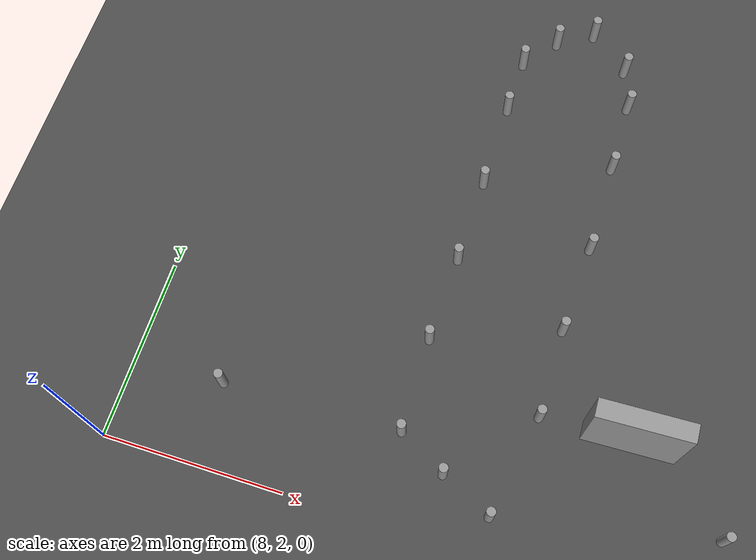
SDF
<sdf version="1.7">
 <world name="default">
  <model name="ground_plane">
   <static>1</static>
   <link name="link">
    <collision name="collision">
     <geometry><plane><normal>0 0 1</normal><size>100 100</size></plane></geometry>
     <surface>
      <contact><collide_bitmask>65535</collide_bitmask></contact>
      <friction><ode><mu>100</mu><mu2>50</mu2></ode></friction>
     </surface>
    </collision>
    <visual name="visual">
     <cast_shadows>0</cast_shadows>
     <geometry><plane><normal>0 0 1</normal><size>100 100</size></plane></geometry>
     <material>
      <script><uri>file://media/materials/scripts/gazebo.material</uri><name>Gazebo/Grey</name></script>
     </material>
    </visual>
   </link>
  </model>
  <model name="Cone_clone_18">
   <link name="link_1">
    <inertial>
     <mass>1</mass>
     <inertia><ixx>0.145833</ixx><ixy>0</ixy><ixz>0</ixz><iyy>0.145833</iyy><iyz>0</iyz><izz>0.125</izz></inertia>
    </inertial>
    <visual name="visual">
     <geometry><cylinder><radius>0.05</radius><length>0.4</length></cylinder></geometry>
     <material>
      <lighting>1</lighting>
      <script><uri>file://media/materials/scripts/gazebo.material</uri><name>Gazebo/Grey</name></script>
      <shader type="pixel"><normal_map>__default__</normal_map></shader>
      <ambient>1 1 1 1</ambient>
      <diffuse>1 1 1 1</diffuse>
      <specular>0.01 0.01 0.01 1</specular>
      <emissive>0 0 0 1</emissive>
     </material>
    </visual>
    <collision name="collision">
     <geometry><cylinder><radius>0.05</radius><length>0.4</length></cylinder></geometry>
     <surface>
      <friction>
       <ode><mu>1</mu><mu2>1</mu2><fdir1>0 0 0</fdir1><slip1>0</slip1><slip2>0</slip2></ode>
       <torsional>
        <coefficient>1</coefficient>
        <patch_radius>0</patch_radius>
        <surface_radius>0</surface_radius>
        <use_patch_radius>1</use_patch_radius>
        <ode><slip>0</slip></ode>
       </torsional>
      </friction>
      <bounce><restitution_coefficient>0</restitution_coefficient><threshold>1e+06</threshold></bounce>
      <contact>
       <collide_without_contact>0</collide_without_contact>
       <collide_without_contact_bitmask>1</collide_without_contact_bitmask>
       <collide_bitmask>1</collide_bitmask>
       <ode>
        <soft_cfm>0</soft_cfm>
        <soft_erp>0.2</soft_erp>
        <kp>1e+13</kp>
        <kd>1</kd>
        <max_vel>0.01</max_vel>
        <min_depth>0</min_depth>
       </ode>
       <bullet>
        <split_impulse>1</split_impulse>
        <split_impulse_penetration_threshold>-0.01</split_impulse_penetration_threshold>
        <soft_cfm>0</soft_cfm>
        <soft_erp>0.2</soft_erp>
        <kp>1e+13</kp>
        <kd>1</kd>
       </bullet>
      </contact>
     </surface>
    </collision>
   </link>
   <static>0</static>
   <pose>12.3193 3.55364 0.25 -7.7e-05 6e-05 9.3e-05</pose>
  </model>
  <model name="Cone_clone_31">
   <link name="link_1">
    <inertial>
     <mass>1</mass>
     <inertia><ixx>0.145833</ixx><ixy>0</ixy><ixz>0</ixz><iyy>0.145833</iyy><iyz>0</iyz><izz>0.125</izz></inertia>
    </inertial>
    <visual name="visual">
     <geometry><cylinder><radius>0.05</radius><length>0.4</length></cylinder></geometry>
     <material>
      <lighting>1</lighting>
      <script><uri>file://media/materials/scripts/gazebo.material</uri><name>Gazebo/Grey</name></script>
      <shader type="pixel"><normal_map>__default__</normal_map></shader>
      <ambient>1 1 1 1</ambient>
      <diffuse>1 1 1 1</diffuse>
      <specular>0.01 0.01 0.01 1</specular>
      <emissive>0 0 0 1</emissive>
     </material>
    </visual>
    <collision name="collision">
     <geometry><cylinder><radius>0.05</radius><length>0.4</length></cylinder></geometry>
     <surface>
      <friction>
       <ode><mu>1</mu><mu2>1</mu2><fdir1>0 0 0</fdir1><slip1>0</slip1><slip2>0</slip2></ode>
       <torsional>
        <coefficient>1</coefficient>
        <patch_radius>0</patch_radius>
        <surface_radius>0</surface_radius>
        <use_patch_radius>1</use_patch_radius>
        <ode><slip>0</slip></ode>
       </torsional>
      </friction>
      <bounce><restitution_coefficient>0</restitution_coefficient><threshold>1e+06</threshold></bounce>
      <contact>
       <collide_without_contact>0</collide_without_contact>
       <collide_without_contact_bitmask>1</collide_without_contact_bitmask>
       <collide_bitmask>1</collide_bitmask>
       <ode>
        <soft_cfm>0</soft_cfm>
        <soft_erp>0.2</soft_erp>
        <kp>1e+13</kp>
        <kd>1</kd>
        <max_vel>0.01</max_vel>
        <min_depth>0</min_depth>
       </ode>
       <bullet>
        <split_impulse>1</split_impulse>
        <split_impulse_penetration_threshold>-0.01</split_impulse_penetration_threshold>
        <soft_cfm>0</soft_cfm>
        <soft_erp>0.2</soft_erp>
        <kp>1e+13</kp>
        <kd>1</kd>
       </bullet>
      </contact>
     </surface>
    </collision>
   </link>
   <static>0</static>
   <pose>9.02005 2.90021 0.250001 -3.2e-05 8.9e-05 5.7e-05</pose>
  </model>
  <model name="Cone_clone_9_clone_7">
   <link name="link_1">
    <inertial>
     <mass>1</mass>
     <inertia><ixx>0.145833</ixx><ixy>0</ixy><ixz>0</ixz><iyy>0.145833</iyy><iyz>0</iyz><izz>0.125</izz></inertia>
    </inertial>
    <visual name="visual">
     <geometry><cylinder><radius>0.05</radius><length>0.4</length></cylinder></geometry>
     <material>
      <lighting>1</lighting>
      <script><uri>file://media/materials/scripts/gazebo.material</uri><name>Gazebo/Grey</name></script>
      <shader type="pixel"><normal_map>__default__</normal_map></shader>
      <ambient>1 1 1 1</ambient>
      <diffuse>1 1 1 1</diffuse>
      <specular>0.01 0.01 0.01 1</specular>
      <emissive>0 0 0 1</emissive>
     </material>
    </visual>
    <collision name="collision">
     <geometry><cylinder><radius>0.05</radius><length>0.4</length></cylinder></geometry>
     <surface>
      <friction>
       <ode><mu>1</mu><mu2>1</mu2><fdir1>0 0 0</fdir1><slip1>0</slip1><slip2>0</slip2></ode>
       <torsional>
        <coefficient>1</coefficient>
        <patch_radius>0</patch_radius>
        <surface_radius>0</surface_radius>
        <use_patch_radius>1</use_patch_radius>
        <ode><slip>0</slip></ode>
       </torsional>
      </friction>
      <bounce><restitution_coefficient>0</restitution_coefficient><threshold>1e+06</threshold></bounce>
      <contact>
       <collide_without_contact>0</collide_without_contact>
       <collide_without_contact_bitmask>1</collide_without_contact_bitmask>
       <collide_bitmask>1</collide_bitmask>
       <ode>
        <soft_cfm>0</soft_cfm>
        <soft_erp>0.2</soft_erp>
        <kp>1e+13</kp>
        <kd>1</kd>
        <max_vel>0.01</max_vel>
        <min_depth>0</min_depth>
       </ode>
       <bullet>
        <split_impulse>1</split_impulse>
        <split_impulse_penetration_threshold>-0.01</split_impulse_penetration_threshold>
        <soft_cfm>0</soft_cfm>
        <soft_erp>0.2</soft_erp>
        <kp>1e+13</kp>
        <kd>1</kd>
       </bullet>
      </contact>
     </surface>
    </collision>
   </link>
   <static>0</static>
   <pose>14.4149 2.88457 0.25 -7.3e-05 6.5e-05 -0.000192</pose>
  </model>
  <model name="Obstacle_clone_clone">
   <link name="link_4">
    <inertial>
     <mass>1</mass>
     <inertia>
      <ixx>0.166667</ixx>
      <ixy>0</ixy>
      <ixz>0</ixz>
      <iyy>0.166667</iyy>
      <iyz>0</iyz>
      <izz>0.166667</izz>
     </inertia>
    </inertial>
    <visual name="visual">
     <geometry><box><size>0.2 1 1</size></box></geometry>
     <material>
      <lighting>1</lighting>
      <script><uri>file://media/materials/scripts/gazebo.material</uri><name>Gazebo/Grey</name></script>
      <shader type="pixel"><normal_map>__default__</normal_map></shader>
      <ambient>0 0 0 1</ambient>
      <diffuse>0 0 0 1</diffuse>
      <specular>0.01 0.01 0.01 1</specular>
      <emissive>0 0 0 1</emissive>
     </material>
    </visual>
    <collision name="collision">
     <geometry><box><size>0.2 1 1</size></box></geometry>
     <surface>
      <friction>
       <ode><mu>1</mu><mu2>1</mu2><fdir1>0 0 0</fdir1><slip1>0</slip1><slip2>0</slip2></ode>
       <torsional>
        <coefficient>1</coefficient>
        <patch_radius>0</patch_radius>
        <surface_radius>0</surface_radius>
        <use_patch_radius>1</use_patch_radius>
        <ode><slip>0</slip></ode>
       </torsional>
      </friction>
      <bounce><restitution_coefficient>0</restitution_coefficient><threshold>1e+06</threshold></bounce>
      <contact>
       <collide_without_contact>0</collide_without_contact>
       <collide_without_contact_bitmask>1</collide_without_contact_bitmask>
       <collide_bitmask>1</collide_bitmask>
       <ode>
        <soft_cfm>0</soft_cfm>
        <soft_erp>0.2</soft_erp>
        <kp>1e+13</kp>
        <kd>1</kd>
        <max_vel>0.01</max_vel>
        <min_depth>0</min_depth>
       </ode>
       <bullet>
        <split_impulse>1</split_impulse>
        <split_impulse_penetration_threshold>-0.01</split_impulse_penetration_threshold>
        <soft_cfm>0</soft_cfm>
        <soft_erp>0.2</soft_erp>
        <kp>1e+13</kp>
        <kd>1</kd>
       </bullet>
      </contact>
     </surface>
    </collision>
   </link>
   <static>0</static>
   <pose>13.2816 3.58991 0.55 0 -0 1.6096</pose>
  </model>
  <model name="Cone_clone_18_clone">
   <link name="link_1">
    <inertial>
     <mass>1</mass>
     <inertia><ixx>0.145833</ixx><ixy>0</ixy><ixz>0</ixz><iyy>0.145833</iyy><iyz>0</iyz><izz>0.125</izz></inertia>
    </inertial>
    <visual name="visual">
     <geometry><cylinder><radius>0.05</radius><length>0.4</length></cylinder></geometry>
     <material>
      <lighting>1</lighting>
      <script><uri>file://media/materials/scripts/gazebo.material</uri><name>Gazebo/Grey</name></script>
      <shader type="pixel"><normal_map>__default__</normal_map></shader>
      <ambient>1 1 1 1</ambient>
      <diffuse>1 1 1 1</diffuse>
      <specular>0.01 0.01 0.01 1</specular>
      <emissive>0 0 0 1</emissive>
     </material>
    </visual>
    <collision name="collision">
     <geometry><cylinder><radius>0.05</radius><length>0.4</length></cylinder></geometry>
     <surface>
      <friction>
       <ode><mu>1</mu><mu2>1</mu2><fdir1>0 0 0</fdir1><slip1>0</slip1><slip2>0</slip2></ode>
       <torsional>
        <coefficient>1</coefficient>
        <patch_radius>0</patch_radius>
        <surface_radius>0</surface_radius>
        <use_patch_radius>1</use_patch_radius>
        <ode><slip>0</slip></ode>
       </torsional>
      </friction>
      <bounce><restitution_coefficient>0</restitution_coefficient><threshold>1e+06</threshold></bounce>
      <contact>
       <collide_without_contact>0</collide_without_contact>
       <collide_without_contact_bitmask>1</collide_without_contact_bitmask>
       <collide_bitmask>1</collide_bitmask>
       <ode>
        <soft_cfm>0</soft_cfm>
        <soft_erp>0.2</soft_erp>
        <kp>1e+13</kp>
        <kd>1</kd>
        <max_vel>0.01</max_vel>
        <min_depth>0</min_depth>
       </ode>
       <bullet>
        <split_impulse>1</split_impulse>
        <split_impulse_penetration_threshold>-0.01</split_impulse_penetration_threshold>
        <soft_cfm>0</soft_cfm>
        <soft_erp>0.2</soft_erp>
        <kp>1e+13</kp>
        <kd>1</kd>
       </bullet>
      </contact>
     </surface>
    </collision>
   </link>
   <static>0</static>
   <pose>10.9893 2.97266 0.25 -6.7e-05 7.1e-05 7.7e-05</pose>
  </model>
  <model name="Cone_clone_18_clone_0">
   <link name="link_1">
    <inertial>
     <mass>1</mass>
     <inertia><ixx>0.145833</ixx><ixy>0</ixy><ixz>0</ixz><iyy>0.145833</iyy><iyz>0</iyz><izz>0.125</izz></inertia>
    </inertial>
    <visual name="visual">
     <geometry><cylinder><radius>0.05</radius><length>0.4</length></cylinder></geometry>
     <material>
      <lighting>1</lighting>
      <script><uri>file://media/materials/scripts/gazebo.material</uri><name>Gazebo/Grey</name></script>
      <shader type="pixel"><normal_map>__default__</normal_map></shader>
      <ambient>1 1 1 1</ambient>
      <diffuse>1 1 1 1</diffuse>
      <specular>0.01 0.01 0.01 1</specular>
      <emissive>0 0 0 1</emissive>
     </material>
    </visual>
    <collision name="collision">
     <geometry><cylinder><radius>0.05</radius><length>0.4</length></cylinder></geometry>
     <surface>
      <friction>
       <ode><mu>1</mu><mu2>1</mu2><fdir1>0 0 0</fdir1><slip1>0</slip1><slip2>0</slip2></ode>
       <torsional>
        <coefficient>1</coefficient>
        <patch_radius>0</patch_radius>
        <surface_radius>0</surface_radius>
        <use_patch_radius>1</use_patch_radius>
        <ode><slip>0</slip></ode>
       </torsional>
      </friction>
      <bounce><restitution_coefficient>0</restitution_coefficient><threshold>1e+06</threshold></bounce>
      <contact>
       <collide_without_contact>0</collide_without_contact>
       <collide_without_contact_bitmask>1</collide_without_contact_bitmask>
       <collide_bitmask>1</collide_bitmask>
       <ode>
        <soft_cfm>0</soft_cfm>
        <soft_erp>0.2</soft_erp>
        <kp>1e+13</kp>
        <kd>1</kd>
        <max_vel>0.01</max_vel>
        <min_depth>0</min_depth>
       </ode>
       <bullet>
        <split_impulse>1</split_impulse>
        <split_impulse_penetration_threshold>-0.01</split_impulse_penetration_threshold>
        <soft_cfm>0</soft_cfm>
        <soft_erp>0.2</soft_erp>
        <kp>1e+13</kp>
        <kd>1</kd>
       </bullet>
      </contact>
     </surface>
    </collision>
   </link>
   <static>0</static>
   <pose>10.9675 4.02266 0.25 -8.2e-05 4.6e-05 9.3e-05</pose>
  </model>
  <model name="Cone_clone_18_clone_1">
   <link name="link_1">
    <inertial>
     <mass>1</mass>
     <inertia><ixx>0.145833</ixx><ixy>0</ixy><ixz>0</ixz><iyy>0.145833</iyy><iyz>0</iyz><izz>0.125</izz></inertia>
    </inertial>
    <visual name="visual">
     <geometry><cylinder><radius>0.05</radius><length>0.4</length></cylinder></geometry>
     <material>
      <lighting>1</lighting>
      <script><uri>file://media/materials/scripts/gazebo.material</uri><name>Gazebo/Grey</name></script>
      <shader type="pixel"><normal_map>__default__</normal_map></shader>
      <ambient>1 1 1 1</ambient>
      <diffuse>1 1 1 1</diffuse>
      <specular>0.01 0.01 0.01 1</specular>
      <emissive>0 0 0 1</emissive>
     </material>
    </visual>
    <collision name="collision">
     <geometry><cylinder><radius>0.05</radius><length>0.4</length></cylinder></geometry>
     <surface>
      <friction>
       <ode><mu>1</mu><mu2>1</mu2><fdir1>0 0 0</fdir1><slip1>0</slip1><slip2>0</slip2></ode>
       <torsional>
        <coefficient>1</coefficient>
        <patch_radius>0</patch_radius>
        <surface_radius>0</surface_radius>
        <use_patch_radius>1</use_patch_radius>
        <ode><slip>0</slip></ode>
       </torsional>
      </friction>
      <bounce><restitution_coefficient>0</restitution_coefficient><threshold>1e+06</threshold></bounce>
      <contact>
       <collide_without_contact>0</collide_without_contact>
       <collide_without_contact_bitmask>1</collide_without_contact_bitmask>
       <collide_bitmask>1</collide_bitmask>
       <ode>
        <soft_cfm>0</soft_cfm>
        <soft_erp>0.2</soft_erp>
        <kp>1e+13</kp>
        <kd>1</kd>
        <max_vel>0.01</max_vel>
        <min_depth>0</min_depth>
       </ode>
       <bullet>
        <split_impulse>1</split_impulse>
        <split_impulse_penetration_threshold>-0.01</split_impulse_penetration_threshold>
        <soft_cfm>0</soft_cfm>
        <soft_erp>0.2</soft_erp>
        <kp>1e+13</kp>
        <kd>1</kd>
       </bullet>
      </contact>
     </surface>
    </collision>
   </link>
   <static>0</static>
   <pose>10.9946 5.00164 0.250006 -2.4e-05 0.00011 9.7e-05</pose>
  </model>
  <model name="Cone_clone_18_clone_2">
   <link name="link_1">
    <inertial>
     <mass>1</mass>
     <inertia><ixx>0.145833</ixx><ixy>0</ixy><ixz>0</ixz><iyy>0.145833</iyy><iyz>0</iyz><izz>0.125</izz></inertia>
    </inertial>
    <visual name="visual">
     <geometry><cylinder><radius>0.05</radius><length>0.4</length></cylinder></geometry>
     <material>
      <lighting>1</lighting>
      <script><uri>file://media/materials/scripts/gazebo.material</uri><name>Gazebo/Grey</name></script>
      <shader type="pixel"><normal_map>__default__</normal_map></shader>
      <ambient>1 1 1 1</ambient>
      <diffuse>1 1 1 1</diffuse>
      <specular>0.01 0.01 0.01 1</specular>
      <emissive>0 0 0 1</emissive>
     </material>
    </visual>
    <collision name="collision">
     <geometry><cylinder><radius>0.05</radius><length>0.4</length></cylinder></geometry>
     <surface>
      <friction>
       <ode><mu>1</mu><mu2>1</mu2><fdir1>0 0 0</fdir1><slip1>0</slip1><slip2>0</slip2></ode>
       <torsional>
        <coefficient>1</coefficient>
        <patch_radius>0</patch_radius>
        <surface_radius>0</surface_radius>
        <use_patch_radius>1</use_patch_radius>
        <ode><slip>0</slip></ode>
       </torsional>
      </friction>
      <bounce><restitution_coefficient>0</restitution_coefficient><threshold>1e+06</threshold></bounce>
      <contact>
       <collide_without_contact>0</collide_without_contact>
       <collide_without_contact_bitmask>1</collide_without_contact_bitmask>
       <collide_bitmask>1</collide_bitmask>
       <ode>
        <soft_cfm>0</soft_cfm>
        <soft_erp>0.2</soft_erp>
        <kp>1e+13</kp>
        <kd>1</kd>
        <max_vel>0.01</max_vel>
        <min_depth>0</min_depth>
       </ode>
       <bullet>
        <split_impulse>1</split_impulse>
        <split_impulse_penetration_threshold>-0.01</split_impulse_penetration_threshold>
        <soft_cfm>0</soft_cfm>
        <soft_erp>0.2</soft_erp>
        <kp>1e+13</kp>
        <kd>1</kd>
       </bullet>
      </contact>
     </surface>
    </collision>
   </link>
   <static>0</static>
   <pose>11.0042 5.98491 0.25 -8.5e-05 5e-05 7.4e-05</pose>
  </model>
  <model name="Cone_clone_18_clone_3">
   <link name="link_1">
    <inertial>
     <mass>1</mass>
     <inertia><ixx>0.145833</ixx><ixy>0</ixy><ixz>0</ixz><iyy>0.145833</iyy><iyz>0</iyz><izz>0.125</izz></inertia>
    </inertial>
    <visual name="visual">
     <geometry><cylinder><radius>0.05</radius><length>0.4</length></cylinder></geometry>
     <material>
      <lighting>1</lighting>
      <script><uri>file://media/materials/scripts/gazebo.material</uri><name>Gazebo/Grey</name></script>
      <shader type="pixel"><normal_map>__default__</normal_map></shader>
      <ambient>1 1 1 1</ambient>
      <diffuse>1 1 1 1</diffuse>
      <specular>0.01 0.01 0.01 1</specular>
      <emissive>0 0 0 1</emissive>
     </material>
    </visual>
    <collision name="collision">
     <geometry><cylinder><radius>0.05</radius><length>0.4</length></cylinder></geometry>
     <surface>
      <friction>
       <ode><mu>1</mu><mu2>1</mu2><fdir1>0 0 0</fdir1><slip1>0</slip1><slip2>0</slip2></ode>
       <torsional>
        <coefficient>1</coefficient>
        <patch_radius>0</patch_radius>
        <surface_radius>0</surface_radius>
        <use_patch_radius>1</use_patch_radius>
        <ode><slip>0</slip></ode>
       </torsional>
      </friction>
      <bounce><restitution_coefficient>0</restitution_coefficient><threshold>1e+06</threshold></bounce>
      <contact>
       <collide_without_contact>0</collide_without_contact>
       <collide_without_contact_bitmask>1</collide_without_contact_bitmask>
       <collide_bitmask>1</collide_bitmask>
       <ode>
        <soft_cfm>0</soft_cfm>
        <soft_erp>0.2</soft_erp>
        <kp>1e+13</kp>
        <kd>1</kd>
        <max_vel>0.01</max_vel>
        <min_depth>0</min_depth>
       </ode>
       <bullet>
        <split_impulse>1</split_impulse>
        <split_impulse_penetration_threshold>-0.01</split_impulse_penetration_threshold>
        <soft_cfm>0</soft_cfm>
        <soft_erp>0.2</soft_erp>
        <kp>1e+13</kp>
        <kd>1</kd>
       </bullet>
      </contact>
     </surface>
    </collision>
   </link>
   <static>0</static>
   <pose>11.0055 6.98714 0.25 -8.8e-05 4.2e-05 9e-05</pose>
  </model>
  <model name="Cone_clone_18_clone_4">
   <link name="link_1">
    <inertial>
     <mass>1</mass>
     <inertia><ixx>0.145833</ixx><ixy>0</ixy><ixz>0</ixz><iyy>0.145833</iyy><iyz>0</iyz><izz>0.125</izz></inertia>
    </inertial>
    <visual name="visual">
     <geometry><cylinder><radius>0.05</radius><length>0.4</length></cylinder></geometry>
     <material>
      <lighting>1</lighting>
      <script><uri>file://media/materials/scripts/gazebo.material</uri><name>Gazebo/Grey</name></script>
      <shader type="pixel"><normal_map>__default__</normal_map></shader>
      <ambient>1 1 1 1</ambient>
      <diffuse>1 1 1 1</diffuse>
      <specular>0.01 0.01 0.01 1</specular>
      <emissive>0 0 0 1</emissive>
     </material>
    </visual>
    <collision name="collision">
     <geometry><cylinder><radius>0.05</radius><length>0.4</length></cylinder></geometry>
     <surface>
      <friction>
       <ode><mu>1</mu><mu2>1</mu2><fdir1>0 0 0</fdir1><slip1>0</slip1><slip2>0</slip2></ode>
       <torsional>
        <coefficient>1</coefficient>
        <patch_radius>0</patch_radius>
        <surface_radius>0</surface_radius>
        <use_patch_radius>1</use_patch_radius>
        <ode><slip>0</slip></ode>
       </torsional>
      </friction>
      <bounce><restitution_coefficient>0</restitution_coefficient><threshold>1e+06</threshold></bounce>
      <contact>
       <collide_without_contact>0</collide_without_contact>
       <collide_without_contact_bitmask>1</collide_without_contact_bitmask>
       <collide_bitmask>1</collide_bitmask>
       <ode>
        <soft_cfm>0</soft_cfm>
        <soft_erp>0.2</soft_erp>
        <kp>1e+13</kp>
        <kd>1</kd>
        <max_vel>0.01</max_vel>
        <min_depth>0</min_depth>
       </ode>
       <bullet>
        <split_impulse>1</split_impulse>
        <split_impulse_penetration_threshold>-0.01</split_impulse_penetration_threshold>
        <soft_cfm>0</soft_cfm>
        <soft_erp>0.2</soft_erp>
        <kp>1e+13</kp>
        <kd>1</kd>
       </bullet>
      </contact>
     </surface>
    </collision>
   </link>
   <static>0</static>
   <pose>12.3117 4.54669 0.249995 6e-06 9.2e-05 9.2e-05</pose>
  </model>
  <model name="Cone_clone_18_clone_5">
   <link name="link_1">
    <inertial>
     <mass>1</mass>
     <inertia><ixx>0.145833</ixx><ixy>0</ixy><ixz>0</ixz><iyy>0.145833</iyy><iyz>0</iyz><izz>0.125</izz></inertia>
    </inertial>
    <visual name="visual">
     <geometry><cylinder><radius>0.05</radius><length>0.4</length></cylinder></geometry>
     <material>
      <lighting>1</lighting>
      <script><uri>file://media/materials/scripts/gazebo.material</uri><name>Gazebo/Grey</name></script>
      <shader type="pixel"><normal_map>__default__</normal_map></shader>
      <ambient>1 1 1 1</ambient>
      <diffuse>1 1 1 1</diffuse>
      <specular>0.01 0.01 0.01 1</specular>
      <emissive>0 0 0 1</emissive>
     </material>
    </visual>
    <collision name="collision">
     <geometry><cylinder><radius>0.05</radius><length>0.4</length></cylinder></geometry>
     <surface>
      <friction>
       <ode><mu>1</mu><mu2>1</mu2><fdir1>0 0 0</fdir1><slip1>0</slip1><slip2>0</slip2></ode>
       <torsional>
        <coefficient>1</coefficient>
        <patch_radius>0</patch_radius>
        <surface_radius>0</surface_radius>
        <use_patch_radius>1</use_patch_radius>
        <ode><slip>0</slip></ode>
       </torsional>
      </friction>
      <bounce><restitution_coefficient>0</restitution_coefficient><threshold>1e+06</threshold></bounce>
      <contact>
       <collide_without_contact>0</collide_without_contact>
       <collide_without_contact_bitmask>1</collide_without_contact_bitmask>
       <collide_bitmask>1</collide_bitmask>
       <ode>
        <soft_cfm>0</soft_cfm>
        <soft_erp>0.2</soft_erp>
        <kp>1e+13</kp>
        <kd>1</kd>
        <max_vel>0.01</max_vel>
        <min_depth>0</min_depth>
       </ode>
       <bullet>
        <split_impulse>1</split_impulse>
        <split_impulse_penetration_threshold>-0.01</split_impulse_penetration_threshold>
        <soft_cfm>0</soft_cfm>
        <soft_erp>0.2</soft_erp>
        <kp>1e+13</kp>
        <kd>1</kd>
       </bullet>
      </contact>
     </surface>
    </collision>
   </link>
   <static>0</static>
   <pose>12.3602 5.55882 0.25 -7.9e-05 5.9e-05 4.7e-05</pose>
  </model>
  <model name="Cone_clone_18_clone_6">
   <link name="link_1">
    <inertial>
     <mass>1</mass>
     <inertia><ixx>0.145833</ixx><ixy>0</ixy><ixz>0</ixz><iyy>0.145833</iyy><iyz>0</iyz><izz>0.125</izz></inertia>
    </inertial>
    <visual name="visual">
     <geometry><cylinder><radius>0.05</radius><length>0.4</length></cylinder></geometry>
     <material>
      <lighting>1</lighting>
      <script><uri>file://media/materials/scripts/gazebo.material</uri><name>Gazebo/Grey</name></script>
      <shader type="pixel"><normal_map>__default__</normal_map></shader>
      <ambient>1 1 1 1</ambient>
      <diffuse>1 1 1 1</diffuse>
      <specular>0.01 0.01 0.01 1</specular>
      <emissive>0 0 0 1</emissive>
     </material>
    </visual>
    <collision name="collision">
     <geometry><cylinder><radius>0.05</radius><length>0.4</length></cylinder></geometry>
     <surface>
      <friction>
       <ode><mu>1</mu><mu2>1</mu2><fdir1>0 0 0</fdir1><slip1>0</slip1><slip2>0</slip2></ode>
       <torsional>
        <coefficient>1</coefficient>
        <patch_radius>0</patch_radius>
        <surface_radius>0</surface_radius>
        <use_patch_radius>1</use_patch_radius>
        <ode><slip>0</slip></ode>
       </torsional>
      </friction>
      <bounce><restitution_coefficient>0</restitution_coefficient><threshold>1e+06</threshold></bounce>
      <contact>
       <collide_without_contact>0</collide_without_contact>
       <collide_without_contact_bitmask>1</collide_without_contact_bitmask>
       <collide_bitmask>1</collide_bitmask>
       <ode>
        <soft_cfm>0</soft_cfm>
        <soft_erp>0.2</soft_erp>
        <kp>1e+13</kp>
        <kd>1</kd>
        <max_vel>0.01</max_vel>
        <min_depth>0</min_depth>
       </ode>
       <bullet>
        <split_impulse>1</split_impulse>
        <split_impulse_penetration_threshold>-0.01</split_impulse_penetration_threshold>
        <soft_cfm>0</soft_cfm>
        <soft_erp>0.2</soft_erp>
        <kp>1e+13</kp>
        <kd>1</kd>
       </bullet>
      </contact>
     </surface>
    </collision>
   </link>
   <static>0</static>
   <pose>12.351 6.60488 0.250005 -3.4e-05 0.0001 -0.000178</pose>
  </model>
  <model name="Cone_clone_18_clone_7">
   <link name="link_1">
    <inertial>
     <mass>1</mass>
     <inertia><ixx>0.145833</ixx><ixy>0</ixy><ixz>0</ixz><iyy>0.145833</iyy><iyz>0</iyz><izz>0.125</izz></inertia>
    </inertial>
    <visual name="visual">
     <geometry><cylinder><radius>0.05</radius><length>0.4</length></cylinder></geometry>
     <material>
      <lighting>1</lighting>
      <script><uri>file://media/materials/scripts/gazebo.material</uri><name>Gazebo/Grey</name></script>
      <shader type="pixel"><normal_map>__default__</normal_map></shader>
      <ambient>1 1 1 1</ambient>
      <diffuse>1 1 1 1</diffuse>
      <specular>0.01 0.01 0.01 1</specular>
      <emissive>0 0 0 1</emissive>
     </material>
    </visual>
    <collision name="collision">
     <geometry><cylinder><radius>0.05</radius><length>0.4</length></cylinder></geometry>
     <surface>
      <friction>
       <ode><mu>1</mu><mu2>1</mu2><fdir1>0 0 0</fdir1><slip1>0</slip1><slip2>0</slip2></ode>
       <torsional>
        <coefficient>1</coefficient>
        <patch_radius>0</patch_radius>
        <surface_radius>0</surface_radius>
        <use_patch_radius>1</use_patch_radius>
        <ode><slip>0</slip></ode>
       </torsional>
      </friction>
      <bounce><restitution_coefficient>0</restitution_coefficient><threshold>1e+06</threshold></bounce>
      <contact>
       <collide_without_contact>0</collide_without_contact>
       <collide_without_contact_bitmask>1</collide_without_contact_bitmask>
       <collide_bitmask>1</collide_bitmask>
       <ode>
        <soft_cfm>0</soft_cfm>
        <soft_erp>0.2</soft_erp>
        <kp>1e+13</kp>
        <kd>1</kd>
        <max_vel>0.01</max_vel>
        <min_depth>0</min_depth>
       </ode>
       <bullet>
        <split_impulse>1</split_impulse>
        <split_impulse_penetration_threshold>-0.01</split_impulse_penetration_threshold>
        <soft_cfm>0</soft_cfm>
        <soft_erp>0.2</soft_erp>
        <kp>1e+13</kp>
        <kd>1</kd>
       </bullet>
      </contact>
     </surface>
    </collision>
   </link>
   <static>0</static>
   <pose>12.3399 7.42711 0.25 -8.9e-05 3.8e-05 -0.000182</pose>
  </model>
  <model name="asphalt_plane">
   <static>1</static>
   <link name="link">
    <collision name="collision"><geometry><box><size>20 20 0.1</size></box></geometry></collision>
    <visual name="visual">
     <cast_shadows>0</cast_shadows>
     <geometry><box><size>20 20 0.1</size></box></geometry>
     <material>
      <script>
       <uri>model://asphalt_plane/materials/scripts</uri>
       <uri>model://asphalt_plane/materials/textures</uri>
       <name>vrc/asphalt</name>
      </script>
     </material>
    </visual>
   </link>
   <pose>8.33296 1.58743 0 0 -0 0</pose>
  </model>
  <model name="Cone_clone_18_clone_8_clone_0">
   <link name="link_1">
    <inertial>
     <mass>1</mass>
     <inertia><ixx>0.145833</ixx><ixy>0</ixy><ixz>0</ixz><iyy>0.145833</iyy><iyz>0</iyz><izz>0.125</izz></inertia>
    </inertial>
    <visual name="visual">
     <geometry><cylinder><radius>0.05</radius><length>0.4</length></cylinder></geometry>
     <material>
      <lighting>1</lighting>
      <script><uri>file://media/materials/scripts/gazebo.material</uri><name>Gazebo/Grey</name></script>
      <shader type="pixel"><normal_map>__default__</normal_map></shader>
      <ambient>1 1 1 1</ambient>
      <diffuse>1 1 1 1</diffuse>
      <specular>0.01 0.01 0.01 1</specular>
      <emissive>0 0 0 1</emissive>
     </material>
    </visual>
    <collision name="collision">
     <geometry><cylinder><radius>0.05</radius><length>0.4</length></cylinder></geometry>
     <surface>
      <friction>
       <ode><mu>1</mu><mu2>1</mu2><fdir1>0 0 0</fdir1><slip1>0</slip1><slip2>0</slip2></ode>
       <torsional>
        <coefficient>1</coefficient>
        <patch_radius>0</patch_radius>
        <surface_radius>0</surface_radius>
        <use_patch_radius>1</use_patch_radius>
        <ode><slip>0</slip></ode>
       </torsional>
      </friction>
      <bounce><restitution_coefficient>0</restitution_coefficient><threshold>1e+06</threshold></bounce>
      <contact>
       <collide_without_contact>0</collide_without_contact>
       <collide_without_contact_bitmask>1</collide_without_contact_bitmask>
       <collide_bitmask>1</collide_bitmask>
       <ode>
        <soft_cfm>0</soft_cfm>
        <soft_erp>0.2</soft_erp>
        <kp>1e+13</kp>
        <kd>1</kd>
        <max_vel>0.01</max_vel>
        <min_depth>0</min_depth>
       </ode>
       <bullet>
        <split_impulse>1</split_impulse>
        <split_impulse_penetration_threshold>-0.01</split_impulse_penetration_threshold>
        <soft_cfm>0</soft_cfm>
        <soft_erp>0.2</soft_erp>
        <kp>1e+13</kp>
        <kd>1</kd>
       </bullet>
      </contact>
     </surface>
    </collision>
   </link>
   <static>0</static>
   <pose>12.1047 2.40346 0.25 -5e-05 8e-05 0.000124</pose>
  </model>
  <model name="Cone_clone_18_clone_8_clone_1">
   <link name="link_1">
    <inertial>
     <mass>1</mass>
     <inertia><ixx>0.145833</ixx><ixy>0</ixy><ixz>0</ixz><iyy>0.145833</iyy><iyz>0</iyz><izz>0.125</izz></inertia>
    </inertial>
    <visual name="visual">
     <geometry><cylinder><radius>0.05</radius><length>0.4</length></cylinder></geometry>
     <material>
      <lighting>1</lighting>
      <script><uri>file://media/materials/scripts/gazebo.material</uri><name>Gazebo/Grey</name></script>
      <shader type="pixel"><normal_map>__default__</normal_map></shader>
      <ambient>1 1 1 1</ambient>
      <diffuse>1 1 1 1</diffuse>
      <specular>0.01 0.01 0.01 1</specular>
      <emissive>0 0 0 1</emissive>
     </material>
    </visual>
    <collision name="collision">
     <geometry><cylinder><radius>0.05</radius><length>0.4</length></cylinder></geometry>
     <surface>
      <friction>
       <ode><mu>1</mu><mu2>1</mu2><fdir1>0 0 0</fdir1><slip1>0</slip1><slip2>0</slip2></ode>
       <torsional>
        <coefficient>1</coefficient>
        <patch_radius>0</patch_radius>
        <surface_radius>0</surface_radius>
        <use_patch_radius>1</use_patch_radius>
        <ode><slip>0</slip></ode>
       </torsional>
      </friction>
      <bounce><restitution_coefficient>0</restitution_coefficient><threshold>1e+06</threshold></bounce>
      <contact>
       <collide_without_contact>0</collide_without_contact>
       <collide_without_contact_bitmask>1</collide_without_contact_bitmask>
       <collide_bitmask>1</collide_bitmask>
       <ode>
        <soft_cfm>0</soft_cfm>
        <soft_erp>0.2</soft_erp>
        <kp>1e+13</kp>
        <kd>1</kd>
        <max_vel>0.01</max_vel>
        <min_depth>0</min_depth>
       </ode>
       <bullet>
        <split_impulse>1</split_impulse>
        <split_impulse_penetration_threshold>-0.01</split_impulse_penetration_threshold>
        <soft_cfm>0</soft_cfm>
        <soft_erp>0.2</soft_erp>
        <kp>1e+13</kp>
        <kd>1</kd>
       </bullet>
      </contact>
     </surface>
    </collision>
   </link>
   <static>0</static>
   <pose>11.5296 2.6749 0.25 -5.2e-05 7.9e-05 0.000119</pose>
  </model>
  <model name="Cone_clone_18_clone_8_clone_4">
   <link name="link_1">
    <inertial>
     <mass>1</mass>
     <inertia><ixx>0.145833</ixx><ixy>0</ixy><ixz>0</ixz><iyy>0.145833</iyy><iyz>0</iyz><izz>0.125</izz></inertia>
    </inertial>
    <visual name="visual">
     <geometry><cylinder><radius>0.05</radius><length>0.4</length></cylinder></geometry>
     <material>
      <lighting>1</lighting>
      <script><uri>file://media/materials/scripts/gazebo.material</uri><name>Gazebo/Grey</name></script>
      <shader type="pixel"><normal_map>__default__</normal_map></shader>
      <ambient>1 1 1 1</ambient>
      <diffuse>1 1 1 1</diffuse>
      <specular>0.01 0.01 0.01 1</specular>
      <emissive>0 0 0 1</emissive>
     </material>
    </visual>
    <collision name="collision">
     <geometry><cylinder><radius>0.05</radius><length>0.4</length></cylinder></geometry>
     <surface>
      <friction>
       <ode><mu>1</mu><mu2>1</mu2><fdir1>0 0 0</fdir1><slip1>0</slip1><slip2>0</slip2></ode>
       <torsional>
        <coefficient>1</coefficient>
        <patch_radius>0</patch_radius>
        <surface_radius>0</surface_radius>
        <use_patch_radius>1</use_patch_radius>
        <ode><slip>0</slip></ode>
       </torsional>
      </friction>
      <bounce><restitution_coefficient>0</restitution_coefficient><threshold>1e+06</threshold></bounce>
      <contact>
       <collide_without_contact>0</collide_without_contact>
       <collide_without_contact_bitmask>1</collide_without_contact_bitmask>
       <collide_bitmask>1</collide_bitmask>
       <ode>
        <soft_cfm>0</soft_cfm>
        <soft_erp>0.2</soft_erp>
        <kp>1e+13</kp>
        <kd>1</kd>
        <max_vel>0.01</max_vel>
        <min_depth>0</min_depth>
       </ode>
       <bullet>
        <split_impulse>1</split_impulse>
        <split_impulse_penetration_threshold>-0.01</split_impulse_penetration_threshold>
        <soft_cfm>0</soft_cfm>
        <soft_erp>0.2</soft_erp>
        <kp>1e+13</kp>
        <kd>1</kd>
       </bullet>
      </contact>
     </surface>
    </collision>
   </link>
   <static>0</static>
   <pose>11.0157 7.64024 0.25 -8.6e-05 4.9e-05 0.000128</pose>
  </model>
  <model name="Cone_clone_18_clone_8_clone_5">
   <link name="link_1">
    <inertial>
     <mass>1</mass>
     <inertia><ixx>0.145833</ixx><ixy>0</ixy><ixz>0</ixz><iyy>0.145833</iyy><iyz>0</iyz><izz>0.125</izz></inertia>
    </inertial>
    <visual name="visual">
     <geometry><cylinder><radius>0.05</radius><length>0.4</length></cylinder></geometry>
     <material>
      <lighting>1</lighting>
      <script><uri>file://media/materials/scripts/gazebo.material</uri><name>Gazebo/Grey</name></script>
      <shader type="pixel"><normal_map>__default__</normal_map></shader>
      <ambient>1 1 1 1</ambient>
      <diffuse>1 1 1 1</diffuse>
      <specular>0.01 0.01 0.01 1</specular>
      <emissive>0 0 0 1</emissive>
     </material>
    </visual>
    <collision name="collision">
     <geometry><cylinder><radius>0.05</radius><length>0.4</length></cylinder></geometry>
     <surface>
      <friction>
       <ode><mu>1</mu><mu2>1</mu2><fdir1>0 0 0</fdir1><slip1>0</slip1><slip2>0</slip2></ode>
       <torsional>
        <coefficient>1</coefficient>
        <patch_radius>0</patch_radius>
        <surface_radius>0</surface_radius>
        <use_patch_radius>1</use_patch_radius>
        <ode><slip>0</slip></ode>
       </torsional>
      </friction>
      <bounce><restitution_coefficient>0</restitution_coefficient><threshold>1e+06</threshold></bounce>
      <contact>
       <collide_without_contact>0</collide_without_contact>
       <collide_without_contact_bitmask>1</collide_without_contact_bitmask>
       <collide_bitmask>1</collide_bitmask>
       <ode>
        <soft_cfm>0</soft_cfm>
        <soft_erp>0.2</soft_erp>
        <kp>1e+13</kp>
        <kd>1</kd>
        <max_vel>0.01</max_vel>
        <min_depth>0</min_depth>
       </ode>
       <bullet>
        <split_impulse>1</split_impulse>
        <split_impulse_penetration_threshold>-0.01</split_impulse_penetration_threshold>
        <soft_cfm>0</soft_cfm>
        <soft_erp>0.2</soft_erp>
        <kp>1e+13</kp>
        <kd>1</kd>
       </bullet>
      </contact>
     </surface>
    </collision>
   </link>
   <static>0</static>
   <pose>11.3288 8.03449 0.25 -9e-05 4e-05 0.000135</pose>
  </model>
  <model name="Cone_clone_18_clone_8_clone_6">
   <link name="link_1">
    <inertial>
     <mass>1</mass>
     <inertia><ixx>0.145833</ixx><ixy>0</ixy><ixz>0</ixz><iyy>0.145833</iyy><iyz>0</iyz><izz>0.125</izz></inertia>
    </inertial>
    <visual name="visual">
     <geometry><cylinder><radius>0.05</radius><length>0.4</length></cylinder></geometry>
     <material>
      <lighting>1</lighting>
      <script><uri>file://media/materials/scripts/gazebo.material</uri><name>Gazebo/Grey</name></script>
      <shader type="pixel"><normal_map>__default__</normal_map></shader>
      <ambient>1 1 1 1</ambient>
      <diffuse>1 1 1 1</diffuse>
      <specular>0.01 0.01 0.01 1</specular>
      <emissive>0 0 0 1</emissive>
     </material>
    </visual>
    <collision name="collision">
     <geometry><cylinder><radius>0.05</radius><length>0.4</length></cylinder></geometry>
     <surface>
      <friction>
       <ode><mu>1</mu><mu2>1</mu2><fdir1>0 0 0</fdir1><slip1>0</slip1><slip2>0</slip2></ode>
       <torsional>
        <coefficient>1</coefficient>
        <patch_radius>0</patch_radius>
        <surface_radius>0</surface_radius>
        <use_patch_radius>1</use_patch_radius>
        <ode><slip>0</slip></ode>
       </torsional>
      </friction>
      <bounce><restitution_coefficient>0</restitution_coefficient><threshold>1e+06</threshold></bounce>
      <contact>
       <collide_without_contact>0</collide_without_contact>
       <collide_without_contact_bitmask>1</collide_without_contact_bitmask>
       <collide_bitmask>1</collide_bitmask>
       <ode>
        <soft_cfm>0</soft_cfm>
        <soft_erp>0.2</soft_erp>
        <kp>1e+13</kp>
        <kd>1</kd>
        <max_vel>0.01</max_vel>
        <min_depth>0</min_depth>
       </ode>
       <bullet>
        <split_impulse>1</split_impulse>
        <split_impulse_penetration_threshold>-0.01</split_impulse_penetration_threshold>
        <soft_cfm>0</soft_cfm>
        <soft_erp>0.2</soft_erp>
        <kp>1e+13</kp>
        <kd>1</kd>
       </bullet>
      </contact>
     </surface>
    </collision>
   </link>
   <static>0</static>
   <pose>11.7251 8.2743 0.249997 -1e-05 0.000134 0.000116</pose>
  </model>
  <model name="Cone_clone_18_clone_8_clone_3">
   <link name="link_1">
    <inertial>
     <mass>1</mass>
     <inertia><ixx>0.145833</ixx><ixy>0</ixy><ixz>0</ixz><iyy>0.145833</iyy><iyz>0</iyz><izz>0.125</izz></inertia>
    </inertial>
    <visual name="visual">
     <geometry><cylinder><radius>0.05</radius><length>0.4</length></cylinder></geometry>
     <material>
      <lighting>1</lighting>
      <script><uri>file://media/materials/scripts/gazebo.material</uri><name>Gazebo/Grey</name></script>
      <shader type="pixel"><normal_map>__default__</normal_map></shader>
      <ambient>1 1 1 1</ambient>
      <diffuse>1 1 1 1</diffuse>
      <specular>0.01 0.01 0.01 1</specular>
      <emissive>0 0 0 1</emissive>
     </material>
    </visual>
    <collision name="collision">
     <geometry><cylinder><radius>0.05</radius><length>0.4</length></cylinder></geometry>
     <surface>
      <friction>
       <ode><mu>1</mu><mu2>1</mu2><fdir1>0 0 0</fdir1><slip1>0</slip1><slip2>0</slip2></ode>
       <torsional>
        <coefficient>1</coefficient>
        <patch_radius>0</patch_radius>
        <surface_radius>0</surface_radius>
        <use_patch_radius>1</use_patch_radius>
        <ode><slip>0</slip></ode>
       </torsional>
      </friction>
      <bounce><restitution_coefficient>0</restitution_coefficient><threshold>1e+06</threshold></bounce>
      <contact>
       <collide_without_contact>0</collide_without_contact>
       <collide_without_contact_bitmask>1</collide_without_contact_bitmask>
       <collide_bitmask>1</collide_bitmask>
       <ode>
        <soft_cfm>0</soft_cfm>
        <soft_erp>0.2</soft_erp>
        <kp>1e+13</kp>
        <kd>1</kd>
        <max_vel>0.01</max_vel>
        <min_depth>0</min_depth>
       </ode>
       <bullet>
        <split_impulse>1</split_impulse>
        <split_impulse_penetration_threshold>-0.01</split_impulse_penetration_threshold>
        <soft_cfm>0</soft_cfm>
        <soft_erp>0.2</soft_erp>
        <kp>1e+13</kp>
        <kd>1</kd>
       </bullet>
      </contact>
     </surface>
    </collision>
   </link>
   <static>0</static>
   <pose>12.1895 7.9 0.250006 -4.1e-05 0.000118 0.000134</pose>
  </model>
 </world>
</sdf>
